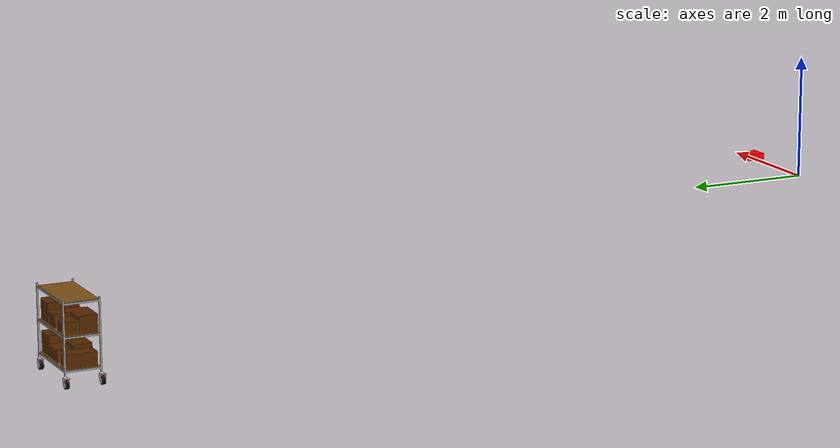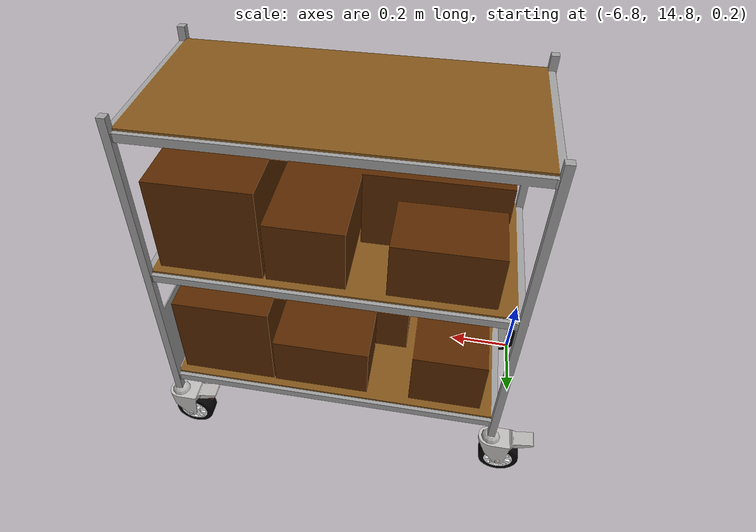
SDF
<sdf version="1.7">
 <world name="world_demo">
  <gravity>0 0 -9.8</gravity>
  <physics type="ode"><max_step_size>0.01</max_step_size><real_time_factor>1</real_time_factor></physics>
  <plugin name="ignition::gazebo::systems::Physics" filename="libignition-gazebo-physics-system.so"/>
  <plugin name="ignition::gazebo::systems::UserCommands" filename="libignition-gazebo-user-commands-system.so"/>
  <plugin name="ignition::gazebo::systems::SceneBroadcaster" filename="libignition-gazebo-scene-broadcaster-system.so"/>
  <plugin name="ignition::gazebo::systems::Imu" filename="ignition-gazebo-imu-system"/>
  <plugin name="ignition::gazebo::systems::Sensors" filename="ignition-gazebo-sensors-system">
   <render_engine>ogre2</render_engine>
  </plugin>
  <scene>
   <ambient>1 1 1 1</ambient>
   <background>0.3 0.7 0.9 1</background>
   <shadows>0</shadows>
   <grid>false</grid>
  </scene>
  <light type="directional" name="sun">
   <cast_shadows>0</cast_shadows>
   <pose>-5 -3 10 0 0 0</pose>
   <diffuse>1 1 1 1</diffuse>
   <specular>1 1 1 1</specular>
   <direction>0 0 -1</direction>
  </light>
  <model name="ground_plane">
   <static>true</static>
   <link name="link">
    <collision name="collision">
     <geometry><plane><normal>0.0 0.0 1</normal><size>1 1</size></plane></geometry>
    </collision>
   </link>
  </model>
  <include>
   <uri>https://fuel.ignitionrobotics.org/1.0/MovAi/models/cart_model_2</uri>
   <name>cart1</name>
   <pose>-5.73 15 0.25 0 -0 0</pose>
  </include>
  <model name="low_obstacle">
   <static>true</static>
   <pose>1.5 0.0 0.05 0 0 0</pose>
   <link name="link">
    <collision name="collision"><geometry><box><size>0.3 0.3 0.1</size></box></geometry></collision>
    <visual name="visual">
     <geometry><box><size>0.3 0.3 0.1</size></box></geometry>
     <material><ambient>1 0 0 1</ambient><diffuse>1 0 0 1</diffuse></material>
    </visual>
   </link>
  </model>
 </world>
</sdf>

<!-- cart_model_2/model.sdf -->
<sdf version="1.7">
    <model name="cart_model2">
        <pose>0 0 0 0 0 0</pose>
        <!-- BASE_LINK FRAME -->
        <link name="base_link">
            <pose>0 0 0 0 0 -1.57079632679</pose>
            <inertial>
                <pose>0 -0.5 0.5 0 0 0</pose>
                <mass>30</mass>
                <inertia>
                    <ixx>0.1</ixx>
                    <ixy>0</ixy>
                    <ixz>0</ixz>
                    <iyy>0.1</iyy>
                    <iyz>0</iyz>
                    <izz>0.1</izz>
                </inertia>
            </inertial>
            <collision name="base_link_collision">
                <pose>0 0 0 0 0 0</pose>
                <geometry>
                    <mesh>
                        <scale>1 1 1</scale>
                        <uri>meshes/cart_base_collision.stl</uri>
                    </mesh>
                </geometry>
                <max_contacts>5</max_contacts>
                <surface>
                    <contact>
                        <ode>
                            <soft_cfm>1.0</soft_cfm>
                            <soft_erp>0.4</soft_erp>
                            <kp>1000000.0</kp>
                            <kd>1</kd>
                            <min_depth>0.01</min_depth>
                        </ode>
                    </contact>
                    <friction>
                        <ode>
                            <mu>1.16</mu>
                            <mu2>1.16</mu2>
                        </ode>
                    </friction>
                </surface>
            </collision>
            <visual name="base_link_visual">
                <pose>0 0 0 0 0 0</pose>
                <geometry>
                    <mesh>
                        <scale>1 1 1</scale>
                        <uri>meshes/cart_base.dae</uri>
                        <submesh>
                            <name>base_metal</name>
                            <center>false</center>
                        </submesh>
                    </mesh>
                </geometry>
            </visual>
            <visual name="base_shelf_visual">
                <pose>0 0 0 0 0 0</pose>
                <geometry>
                    <mesh>
                        <scale>1 1 1</scale>
                        <uri>meshes/cart_base.dae</uri>
                        <submesh>
                            <name>base_shelf</name>
                            <center>false</center>
                        </submesh>
                    </mesh>
                </geometry>
            </visual>
            <visual name="back_left_sup_visual">
                <pose>-0.245 -1.005 0.05 0 0 0</pose>
                <geometry>
                    <mesh>
                        <scale>1 1 1</scale>
                        <uri>meshes/sup_wheels.dae</uri>
                    </mesh>
                </geometry>
            </visual>
            <visual name="back_right_sup_visual">
                <pose>0.245 -1.005 0.05 0 0 0</pose>
                <geometry>
                    <mesh>
                        <scale>1 1 1</scale>
                        <uri>meshes/sup_wheels.dae</uri>
                    </mesh>
                </geometry>
            </visual>
            <visual name="tag_visual">
                <pose>0 0 0 0 0 0</pose>
                <geometry>
                    <mesh>
                        <scale>1 1 1</scale>
                        <uri>meshes/cart_base.dae</uri>
                        <submesh>
                            <name>tag</name>
                            <center>false</center>
                        </submesh>
                    </mesh>
                </geometry>
                <material>
                    <diffuse>1.0 1.0 1.0</diffuse>
                    <specular>1.0 1.0 1.0</specular>
                    <pbr>
                        <metal>
                            <albedo_map>meshes/cart_tag.png</albedo_map>
                        </metal>
                    </pbr>
                </material>
            </visual>
        </link>
        <!-- Wheels -->
        <!-- Back Left -->
        <link name="back_left">
            <pose>-1.04 -0.245 -0.05 0 0 1.570796327</pose>
            <inertial>
                <pose>0 0 0 0 1.570796327 0</pose>
                <mass>0.01</mass>
                <inertia>
                    <ixx>0.0000175</ixx>
                    <ixy>0</ixy>
                    <ixz>0</ixz>
                    <iyy>0.0000175</iyy>
                    <iyz>0</iyz>
                    <izz>0.00003125</izz>
                </inertia>
            </inertial>
            <collision name="back_left_collision">
                <pose>0 0 0 0 1.570796327 0</pose>
                <geometry>
                    <cylinder>
                        <length>0.03</length>
                        <radius>0.06</radius>
                    </cylinder>
                </geometry>
                <max_contacts>5</max_contacts>
                <surface>
                    <contact>
                        <ode>
                            <soft_cfm>1.0</soft_cfm>
                            <soft_erp>0.4</soft_erp>
                            <kp>1000000.0</kp>
                            <kd>1</kd>
                            <min_depth>0.01</min_depth>
                        </ode>
                    </contact>
                    <friction>
                        <ode>
                            <mu>1.16</mu>
                            <mu2>1.16</mu2>
                        </ode>
                    </friction>
                </surface>
            </collision>
            <visual name="back_left_visual">
                <pose>0 0 0 0 0 0</pose>
                <geometry>
                    <mesh>
                        <scale>1 1 1</scale>
                        <uri>meshes/wheel.dae</uri>
                    </mesh>
                </geometry>
            </visual>
        </link>
        <joint name="back_left_joint" type="revolute">
            <child>back_left</child>
            <parent>base_link</parent>
            <axis>
                <xyz>1 0 0</xyz>
                <dynamics>
                    <friction>0.5</friction>
                    <damping>0.0001</damping>
                </dynamics>
            </axis>
        </joint>
        <!-- Back Right -->
        <link name="back_right">
            <pose>-1.04 0.245 -0.05 0 0 1.570796327</pose>
            <inertial>
                <pose>0 0 0 0 1.570796327 0</pose>
                <mass>0.01</mass>
                <inertia>
                    <ixx>0.0000175</ixx>
                    <ixy>0</ixy>
                    <ixz>0</ixz>
                    <iyy>0.0000175</iyy>
                    <iyz>0</iyz>
                    <izz>0.00003125</izz>
                </inertia>
            </inertial>
            <collision name="back_right_collision">
                <pose>0 0 0 0 1.570796327 0</pose>
                <geometry>
                    <cylinder>
                        <length>0.03</length>
                        <radius>0.06</radius>
                    </cylinder>
                </geometry>
                <max_contacts>5</max_contacts>
                <surface>
                    <contact>
                        <ode>
                            <soft_cfm>1.0</soft_cfm>
                            <soft_erp>0.4</soft_erp>
                            <kp>1000000.0</kp>
                            <kd>1</kd>
                            <min_depth>0.01</min_depth>
                        </ode>
                    </contact>
                    <friction>
                        <ode>
                            <mu>1.16</mu>
                            <mu2>1.16</mu2>
                        </ode>
                    </friction>
                </surface>
            </collision>
            <visual name="back_right_visual">
                <pose>0 0 0 0 0 0</pose>
                <geometry>
                    <mesh>
                        <scale>1 1 1</scale>
                        <uri>meshes/wheel.dae</uri>
                    </mesh>
                </geometry>
            </visual>
        </link>
        <joint name="back_right_joint" type="revolute">
            <child>back_right</child>
            <parent>base_link</parent>
            <axis>
                <xyz>1 0 0</xyz>
                <dynamics>
                    <friction>0.5</friction>
                    <damping>0.0001</damping>
                </dynamics>
            </axis>
        </joint>
        <!-- Front Left -->
        <link name="wheel_sup_front_left">
            <pose>0 -0.245 0.05 0 0 1.570796327</pose>
            <inertial>
                <pose>0 0 0 0 0 0</pose>
                <mass>0.01</mass>
                <inertia>
                    <ixx>0.0000175</ixx>
                    <ixy>0</ixy>
                    <ixz>0</ixz>
                    <iyy>0.0000175</iyy>
                    <iyz>0</iyz>
                    <izz>0.0000175</izz>
                </inertia>
            </inertial>
            <visual name="wheel_sup_front_left_visual">
                <pose>0 0 0 0 0 3.14159265359</pose>
                <geometry>
                    <mesh>
                        <scale>1 1 1</scale>
                        <uri>meshes/sup_wheels.dae</uri>
                    </mesh>
                </geometry>
            </visual>
        </link>
        <joint name="wheel_sup_front_left_joint" type="revolute">
            <child>wheel_sup_front_left</child>
            <parent>base_link</parent>
            <axis>
                <xyz>0 0 1</xyz>
                <dynamics>
                    <damping>0.001</damping>
                </dynamics>
            </axis>
        </joint>
        <link name="front_left">
            <pose>-0.04 -0.245 -0.05 0 0 1.570796327</pose>
            <inertial>
                <pose>0 0 0 0 1.570796327 0</pose>
                <mass>0.01</mass>
                <inertia>
                    <ixx>0.0000175</ixx>
                    <ixy>0</ixy>
                    <ixz>0</ixz>
                    <iyy>0.0000175</iyy>
                    <iyz>0</iyz>
                    <izz>0.00003125</izz>
                </inertia>
            </inertial>
            <collision name="front_left_collision">
                <pose>0 0 0 0 1.570796327 0</pose>
                <geometry>
                    <cylinder>
                        <length>0.03</length>
                        <radius>0.06</radius>
                    </cylinder>
                </geometry>
                <max_contacts>5</max_contacts>
                <surface>
                    <contact>
                        <ode>
                            <soft_cfm>1.0</soft_cfm>
                            <soft_erp>0.4</soft_erp>
                            <kp>1000000.0</kp>
                            <kd>1</kd>
                            <min_depth>0.01</min_depth>
                        </ode>
                    </contact>
                    <friction>
                        <ode>
                            <mu>1.16</mu>
                            <mu2>1.16</mu2>
                        </ode>
                    </friction>
                </surface>
            </collision>
            <visual name="front_left_visual">
                <pose>0 0 0 0 0 0</pose>
                <geometry>
                    <mesh>
                        <scale>1 1 1</scale>
                        <uri>meshes/wheel.dae</uri>
                    </mesh>
                </geometry>
            </visual>
        </link>
        <joint name="front_left_joint" type="revolute">
            <child>front_left</child>
            <parent>wheel_sup_front_left</parent>
            <axis>
                <xyz>1 0 0</xyz>
                <dynamics>
                    <friction>0.5</friction>
                    <damping>0.0001</damping>
                </dynamics>
            </axis>
        </joint>
        <!-- Front Right -->
        <link name="wheel_sup_front_right">
            <pose>0 0.245 0.05 0 0 1.570796327</pose>
            <inertial>
                <pose>0 0 0 0 0 0</pose>
                <mass>0.01</mass>
                <inertia>
                    <ixx>0.0000175</ixx>
                    <ixy>0</ixy>
                    <ixz>0</ixz>
                    <iyy>0.0000175</iyy>
                    <iyz>0</iyz>
                    <izz>0.0000175</izz>
                </inertia>
            </inertial>
            <visual name="wheel_sup_front_right_visual">
                <pose>0 0 0 0 0 3.14159265359</pose>
                <geometry>
                    <mesh>
                        <scale>1 1 1</scale>
                        <uri>meshes/sup_wheels.dae</uri>
                    </mesh>
                </geometry>
            </visual>
        </link>
        <joint name="wheel_sup_front_right_joint" type="revolute">
            <child>wheel_sup_front_right</child>
            <parent>base_link</parent>
            <axis>
                <xyz>0 0 1</xyz>
                <dynamics>
                    <damping>0.001</damping>
                </dynamics>
            </axis>
        </joint>
        <link name="front_right">
            <pose>-0.04 0.245 -0.05 0 0 1.570796327</pose>
            <inertial>
                <pose>0 0 0 0 1.570796327 0</pose>
                <mass>0.01</mass>
                <inertia>
                    <ixx>0.0000175</ixx>
                    <ixy>0</ixy>
                    <ixz>0</ixz>
                    <iyy>0.0000175</iyy>
                    <iyz>0</iyz>
                    <izz>0.00003125</izz>
                </inertia>
            </inertial>
            <collision name="front_right_collision">
                <pose>0 0 0 0 1.570796327 0</pose>
                <geometry>
                    <cylinder>
                        <length>0.03</length>
                        <radius>0.06</radius>
                    </cylinder>
                </geometry>
                <max_contacts>5</max_contacts>
                <surface>
                    <contact>
                        <ode>
                            <soft_cfm>1.0</soft_cfm>
                            <soft_erp>0.4</soft_erp>
                            <kp>1000000.0</kp>
                            <kd>1</kd>
                            <min_depth>0.01</min_depth>
                        </ode>
                    </contact>
                    <friction>
                        <ode>
                            <mu>1.16</mu>
                            <mu2>1.16</mu2>
                        </ode>
                    </friction>
                </surface>
            </collision>
            <visual name="front_right_visual">
                <pose>0 0 0 0 0 0</pose>
                <geometry>
                    <mesh>
                        <scale>1 1 1</scale>
                        <uri>meshes/wheel.dae</uri>
                    </mesh>
                </geometry>
            </visual>
        </link>
        <joint name="front_right_joint" type="revolute">
            <child>front_right</child>
            <parent>wheel_sup_front_right</parent>
            <axis>
                <xyz>1 0 0</xyz>
                <dynamics>
                    <friction>0.5</friction>
                    <damping>0.0001</damping>
                </dynamics>
            </axis>
        </joint>
    </model>
</sdf>
